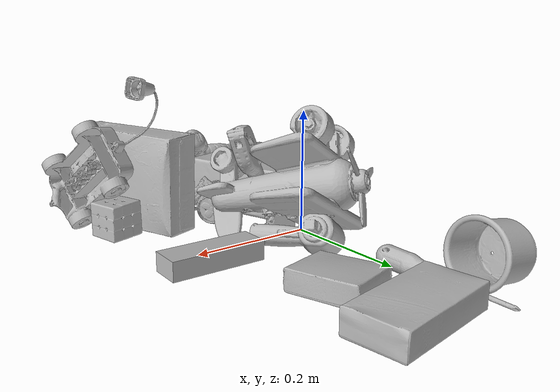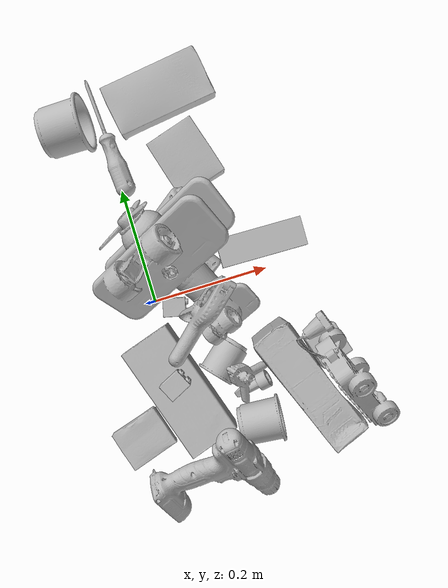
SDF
<sdf version="1.4">
  <world name="default">
    <light name="light1" type="point">
      <pose>0 0 1 0 0 0</pose>
      <diffuse>3 3 3 1</diffuse>
      <specular>3 3 3 1</specular>
    </light>
    <light name="light2" type="point">
      <pose>0 0.5 2 0 0 0</pose>
      <diffuse>1 1 1 1</diffuse>
      <specular>1 1 1 1</specular>
    </light>
    <light name="light3" type="point">
      <pose>0 0.5 2 0 0 0</pose>
      <diffuse>3 3 3 1</diffuse>
      <specular>3 3 3 1</specular>
    </light>
    <scene>
      <ambient>0.7 0.7 0.7</ambient>
    </scene>
    <model name="box21">
      <link name="link_box21">
        <collision name="default">
          <geometry>
            <mesh>
              <uri>model://cracker_box/collision_meshes/collision.obj</uri>
              <scale>1.0 1.0 1.0</scale>
            </mesh>
          </geometry>
          <surface>
            <friction>
              <ode>
                <mu>0.5</mu>
                <mu2>0.5</mu2>
              </ode>
            </friction>
          <contact>
        <ode>
            <max_vel>0</max_vel>
            <min_depth>0.0001</min_depth>
            <kp>1e8</kp>
        </ode>
    </contact></surface>
        </collision>
        <visual name="default">
          <geometry>
            <mesh>
              <uri>model://cracker_box/visual_meshes/visual.dae</uri>
              <scale>1.0 1.0 1.0</scale>
            </mesh>
          </geometry>
        </visual>
        <inertial>
          <mass>2.2869980335235596</mass>
          <pose>0.0009464151225984097 0.0002543425071053207 -0.0017029535956680775 -0.0003162075418873318 -0.011106487737663914 0.0025467956997025456</pose>
          <inertia>
            <ixx>0.005817102</ixx>
            <iyy>0.009605178</iyy>
            <izz>0.013707472</izz>
            <ixy>0</ixy>
            <ixz>0</ixz>
            <iyz>0</iyz>
          </inertia>
        </inertial>
      </link>
      <pose>0.20595772564411163 -0.19597169756889343 0.08175771683454514 1.5452270728296906 0.009038232886644891 1.9498164013121533</pose>
    </model>
    <model name="box22">
      <link name="link_box22">
        <collision name="default">
          <geometry>
            <mesh>
              <uri>model://pudding_box/collision_meshes/collision.obj</uri>
              <scale>1.0 1.0 1.0</scale>
            </mesh>
          </geometry>
          <surface>
            <friction>
              <ode>
                <mu>0.5</mu>
                <mu2>0.5</mu2>
              </ode>
            </friction>
          <contact>
        <ode>
            <max_vel>0</max_vel>
            <min_depth>0.0001</min_depth>
            <kp>1e8</kp>
        </ode>
    </contact></surface>
        </collision>
        <visual name="default">
          <geometry>
            <mesh>
              <uri>model://pudding_box/visual_meshes/visual.dae</uri>
              <scale>1.0 1.0 1.0</scale>
            </mesh>
          </geometry>
        </visual>
        <inertial>
          <mass>0.5370154976844788</mass>
          <pose>0.0004894821904599667 0.0008067885646596551 -0.0005188827635720372 0.005213101796859606 -0.006603800100757192 0.02007981956729938</pose>
          <inertia>
            <ixx>0.0006070684</ixx>
            <iyy>0.00040843996</iyy>
            <izz>0.00089649507</izz>
            <ixy>0</ixy>
            <ixz>0</ixz>
            <iyz>0</iyz>
          </inertia>
        </inertial>
      </link>
      <pose>0.12240390479564667 0.2189505696296692 0.019726118072867393 0.022342655979657 -0.011381309182727183 0.28390295953469946</pose>
    </model>
    <model name="box23">
      <link name="link_box23">
        <collision name="default">
          <geometry>
            <mesh>
              <uri>model://jenga/collision_meshes/collision.obj</uri>
              <scale>1.0 1.0 1.0</scale>
            </mesh>
          </geometry>
          <surface>
            <friction>
              <ode>
                <mu>0.5</mu>
                <mu2>0.5</mu2>
              </ode>
            </friction>
          <contact>
        <ode>
            <max_vel>0</max_vel>
            <min_depth>0.0001</min_depth>
            <kp>1e8</kp>
        </ode>
    </contact></surface>
        </collision>
        <visual name="default">
          <geometry>
            <mesh>
              <uri>model://jenga/visual_meshes/visual.dae</uri>
              <scale>1.0 1.0 1.0</scale>
            </mesh>
          </geometry>
        </visual>
        <inertial>
          <mass>0.17325031757354736</mass>
          <pose>-2.502855807051674e-07 -0.0001025000965455547 -4.0923401684267446e-05 0.0 -7.34215461761844e-07 0.0</pose>
          <inertia>
            <ixx>4.7942573e-05</ixx>
            <iyy>0.00032485754</iyy>
            <izz>0.00034681303</izz>
            <ixy>0</ixy>
            <ixz>0</ixz>
            <iyz>0</iyz>
          </inertia>
        </inertial>
      </link>
      <pose>0.20417584478855133 0.044180478900671005 0.014999997802078724 2.6392829362857538e-09 5.668232797153456e-09 3.121284040775663</pose>
    </model>
    <model name="cup1">
      <link name="link_cup1">
        <collision name="default">
          <geometry>
            <mesh>
              <uri>model://c_cups/collision_meshes/collision.obj</uri>
              <scale>1.0 1.0 1.0</scale>
            </mesh>
          </geometry>
          <surface>
            <friction>
              <ode>
                <mu>0.5</mu>
                <mu2>0.5</mu2>
              </ode>
            </friction>
          <contact>
        <ode>
            <max_vel>0</max_vel>
            <min_depth>0.0001</min_depth>
            <kp>1e8</kp>
        </ode>
    </contact></surface>
        </collision>
        <visual name="default">
          <geometry>
            <mesh>
              <uri>model://c_cups/visual_meshes/visual.dae</uri>
              <scale>1.0 1.0 1.0</scale>
            </mesh>
          </geometry>
        </visual>
        <inertial>
          <mass>0.033937059342861176</mass>
          <pose>0.0007237257086671889 0.002015391131862998 -0.0012750985333696008 0.3021568203324006 0.0134615240317058 -0.08771816491093205</pose>
          <inertia>
            <ixx>2.5238536e-05</ixx>
            <iyy>2.4792533e-05</iyy>
            <izz>2.2320162e-05</izz>
            <ixy>0</ixy>
            <ixz>0</ixz>
            <iyz>0</iyz>
          </inertia>
        </inertial>
      </link>
      <pose>0.0870780348777771 -0.12719012796878815 0.030161790549755096 -1.4808838227399947 -0.5308974328243686 2.24836778232867</pose>
    </model>
    <model name="cup2">
      <link name="link_cup2">
        <collision name="default">
          <geometry>
            <mesh>
              <uri>model://f_cups/collision_meshes/collision.obj</uri>
              <scale>1.0 1.0 1.0</scale>
            </mesh>
          </geometry>
          <surface>
            <friction>
              <ode>
                <mu>0.5</mu>
                <mu2>0.5</mu2>
              </ode>
            </friction>
          <contact>
        <ode>
            <max_vel>0</max_vel>
            <min_depth>0.0001</min_depth>
            <kp>1e8</kp>
        </ode>
    </contact></surface>
        </collision>
        <visual name="default">
          <geometry>
            <mesh>
              <uri>model://f_cups/visual_meshes/visual.dae</uri>
              <scale>1.0 1.0 1.0</scale>
            </mesh>
          </geometry>
        </visual>
        <inertial>
          <mass>0.10278050601482391</mass>
          <pose>-0.003171466989442706 -0.0006240068469196558 -0.003655537962913513 0.7862283183637603 -0.2607933822369466 -0.1823733550036739</pose>
          <inertia>
            <ixx>9.661645e-05</ixx>
            <iyy>0.00010135175</iyy>
            <izz>0.000105510015</izz>
            <ixy>0</ixy>
            <ixz>0</ixz>
            <iyz>0</iyz>
          </inertia>
        </inertial>
      </link>
      <pose>0.11472703516483307 -0.24593481421470642 0.03703109547495842 1.3152992105240757 -1.17829948437787 1.7429390438537664</pose>
    </model>
    <model name="box11">
      <link name="link_box11">
        <collision name="default">
          <geometry>
            <mesh>
              <uri>model://wood_block/collision_meshes/collision.obj</uri>
              <scale>1.0 1.0 1.0</scale>
            </mesh>
          </geometry>
          <surface>
            <friction>
              <ode>
                <mu>0.5</mu>
                <mu2>0.5</mu2>
              </ode>
            </friction>
          <contact>
        <ode>
            <max_vel>0</max_vel>
            <min_depth>0.0001</min_depth>
            <kp>1e8</kp>
        </ode>
    </contact></surface>
        </collision>
        <visual name="default">
          <geometry>
            <mesh>
              <uri>model://wood_block/visual_meshes/visual.dae</uri>
              <scale>1.0 1.0 1.0</scale>
            </mesh>
          </geometry>
        </visual>
        <inertial>
          <mass>2.321592330932617</mass>
          <pose>-5.813315056002466e-06 -0.000570809468626976 0.0002640858292579651 -0.052209755297172346 -0.005192694580027673 -0.006861376555374886</pose>
          <inertia>
            <ixx>0.0031066423</ixx>
            <iyy>0.009813884</iyy>
            <izz>0.009777175</izz>
            <ixy>0</ixy>
            <ixz>0</ixz>
            <iyz>0</iyz>
          </inertia>
        </inertial>
      </link>
      <pose>0.0001825930376071483 -0.1522611826658249 0.04570063203573227 1.5681308370313523 -0.0069391889429245195 1.889520383020991</pose>
    </model>
    <model name="box12">
      <link name="link_box12">
        <collision name="default">
          <geometry>
            <mesh>
              <uri>model://gelatin_box/collision_meshes/collision.obj</uri>
              <scale>1.0 1.0 1.0</scale>
            </mesh>
          </geometry>
          <surface>
            <friction>
              <ode>
                <mu>0.5</mu>
                <mu2>0.5</mu2>
              </ode>
            </friction>
          <contact>
        <ode>
            <max_vel>0</max_vel>
            <min_depth>0.0001</min_depth>
            <kp>1e8</kp>
        </ode>
    </contact></surface>
        </collision>
        <visual name="default">
          <geometry>
            <mesh>
              <uri>model://gelatin_box/visual_meshes/visual.dae</uri>
              <scale>1.0 1.0 1.0</scale>
            </mesh>
          </geometry>
        </visual>
        <inertial>
          <mass>0.2263340801000595</mass>
          <pose>0.0004319618456065655 0.00011156871914863586 -0.00036403207923285663 -0.001050371981036731 -0.004755818689382226 0.016440561334450605</pose>
          <inertia>
            <ixx>0.00015977336</ixx>
            <iyy>0.00011412529</iyy>
            <izz>0.00024321067</izz>
            <ixy>0</ixy>
            <ixz>0</ixz>
            <iyz>0</iyz>
          </inertia>
        </inertial>
      </link>
      <pose>-0.08443709462881088 -0.21905283629894257 0.01516831386834383 0.005597547266671039 -0.007304609965496022 1.865024348420262</pose>
    </model>
    <model name="box13">
      <link name="link_box13">
        <collision name="default">
          <geometry>
            <mesh>
              <uri>model://sugar_box/collision_meshes/collision.obj</uri>
              <scale>1.0 1.0 1.0</scale>
            </mesh>
          </geometry>
          <surface>
            <friction>
              <ode>
                <mu>0.5</mu>
                <mu2>0.5</mu2>
              </ode>
            </friction>
          <contact>
        <ode>
            <max_vel>0</max_vel>
            <min_depth>0.0001</min_depth>
            <kp>1e8</kp>
        </ode>
    </contact></surface>
        </collision>
        <visual name="default">
          <geometry>
            <mesh>
              <uri>model://sugar_box/visual_meshes/visual.dae</uri>
              <scale>1.0 1.0 1.0</scale>
            </mesh>
          </geometry>
        </visual>
        <inertial>
          <mass>0.4976349174976349</mass>
          <pose>0.0010343727190047503 3.849109634757042e-05 -0.00036364805418998003 -0.0004046263004245651 0.001050663405794887 0.002615379021776999</pose>
          <inertia>
            <ixx>0.0004146281</ixx>
            <iyy>0.0013401629</iyy>
            <izz>0.0016043353</izz>
            <ixy>0</ixy>
            <ixz>0</ixz>
            <iyz>0</iyz>
          </inertia>
        </inertial>
      </link>
      <pose>0.11010953783988953 0.33925923705101013 0.022798605263233185 0.0007757345817441783 -0.023433366526739594 -2.996276098797765</pose>
    </model>
    <model name="box14">
      <link name="link_box14">
        <collision name="default">
          <geometry>
            <mesh>
              <uri>model://rubiks_cube/collision_meshes/collision.obj</uri>
              <scale>1.0 1.0 1.0</scale>
            </mesh>
          </geometry>
          <surface>
            <friction>
              <ode>
                <mu>0.5</mu>
                <mu2>0.5</mu2>
              </ode>
            </friction>
          <contact>
        <ode>
            <max_vel>0</max_vel>
            <min_depth>0.0001</min_depth>
            <kp>1e8</kp>
        </ode>
    </contact></surface>
        </collision>
        <visual name="default">
          <geometry>
            <mesh>
              <uri>model://rubiks_cube/visual_meshes/visual.dae</uri>
              <scale>1.0 1.0 1.0</scale>
            </mesh>
          </geometry>
        </visual>
        <inertial>
          <mass>0.2531126141548157</mass>
          <pose>2.6721041649580002e-05 5.2569666877388954e-05 -7.264316536748083e-06 -0.05467274129792389 -0.0981396008906979 -0.0344563195746163</pose>
          <inertia>
            <ixx>0.00013986173</ixx>
            <iyy>0.00013920949</iyy>
            <izz>0.00014102072</izz>
            <ixy>0</ixy>
            <ixz>0</ixz>
            <iyz>0</iyz>
          </inertia>
        </inertial>
      </link>
      <pose>0.26035916805267334 -0.15475879609584808 0.029059670865535736 -3.134204572073367 0.010910744848803531 0.2535735786729371</pose>
    </model>
    <model name="cup15">
      <link name="link_cup15">
        <collision name="default">
          <geometry>
            <mesh>
              <uri>model://j_cups/collision_meshes/collision.obj</uri>
              <scale>1.0 1.0 1.0</scale>
            </mesh>
          </geometry>
          <surface>
            <friction>
              <ode>
                <mu>0.5</mu>
                <mu2>0.5</mu2>
              </ode>
            </friction>
          <contact>
        <ode>
            <max_vel>0</max_vel>
            <min_depth>0.0001</min_depth>
            <kp>1e8</kp>
        </ode>
    </contact></surface>
        </collision>
        <visual name="default">
          <geometry>
            <mesh>
              <uri>model://j_cups/visual_meshes/visual.dae</uri>
              <scale>1.0 1.0 1.0</scale>
            </mesh>
          </geometry>
        </visual>
        <inertial>
          <mass>0.12765173614025116</mass>
          <pose>0.0006164864171296358 0.0005398980574682355 -0.0013479006011039019 0.030303852295551513 0.03757989298695449 0.4386938541947324</pose>
          <inertia>
            <ixx>0.00018743309</ixx>
            <iyy>0.00018938213</iyy>
            <izz>0.0002160715</izz>
            <ixy>0</ixy>
            <ixz>0</ixz>
            <iyz>0</iyz>
          </inertia>
        </inertial>
      </link>
      <pose>-0.05729382857680321 0.3217616379261017 0.04715031385421753 1.441299893812593 -0.17633272059196292 1.5742515457914235</pose>
    </model>
    <model name="toy1">
      <link name="link_toy1">
        <collision name="default">
          <geometry>
            <mesh>
              <uri>model://f_lego_duplo/collision_meshes/collision.obj</uri>
              <scale>1.0 1.0 1.0</scale>
            </mesh>
          </geometry>
          <surface>
            <friction>
              <ode>
                <mu>0.5</mu>
                <mu2>0.5</mu2>
              </ode>
            </friction>
          <contact>
        <ode>
            <max_vel>0</max_vel>
            <min_depth>0.0001</min_depth>
            <kp>1e8</kp>
        </ode>
    </contact></surface>
        </collision>
        <visual name="default">
          <geometry>
            <mesh>
              <uri>model://f_lego_duplo/visual_meshes/visual.dae</uri>
              <scale>1.0 1.0 1.0</scale>
            </mesh>
          </geometry>
        </visual>
        <inertial>
          <mass>0.04013235494494438</mass>
          <pose>2.369376306887716e-05 0.00013393163681030273 0.0018837876850739121 0.029838734112773806 -0.014424842824784668 -0.6756708500035773</pose>
          <inertia>
            <ixx>8.480189e-06</ixx>
            <iyy>8.555736e-06</iyy>
            <izz>7.361164e-06</izz>
            <ixy>0</ixy>
            <ixz>0</ixz>
            <iyz>0</iyz>
          </inertia>
        </inertial>
      </link>
      <pose>0.0008977008983492851 -0.13718700408935547 0.10607940703630447 1.5661409994172035 4.598846008348593e-05 2.0315988139120718</pose>
    </model>
    <model name="toy2">
      <link name="link_toy2">
        <collision name="default">
          <geometry>
            <mesh>
              <uri>model://e_toy_airplane/collision_meshes/collision.obj</uri>
              <scale>1.0 1.0 1.0</scale>
            </mesh>
          </geometry>
          <surface>
            <friction>
              <ode>
                <mu>0.5</mu>
                <mu2>0.5</mu2>
              </ode>
            </friction>
          <contact>
        <ode>
            <max_vel>0</max_vel>
            <min_depth>0.0001</min_depth>
            <kp>1e8</kp>
        </ode>
    </contact></surface>
        </collision>
        <visual name="default">
          <geometry>
            <mesh>
              <uri>model://e_toy_airplane/visual_meshes/visual.dae</uri>
              <scale>1.0 1.0 1.0</scale>
            </mesh>
          </geometry>
        </visual>
        <inertial>
          <mass>0.030105752870440483</mass>
          <pose>0.00011740480840671808 -2.248285454697907e-05 -0.011187204159796238 0.0055184715057391125 0.009228317867647443 0.150413097465581</pose>
          <inertia>
            <ixx>9.18862e-06</ixx>
            <iyy>9.094625e-06</iyy>
            <izz>2.761542e-06</izz>
            <ixy>0</ixy>
            <ixz>0</ixz>
            <iyz>0</iyz>
          </inertia>
        </inertial>
      </link>
      <pose>0.11740215867757797 -0.18836098909378052 0.010706737637519836 2.185584306833009 -1.1048551387725816 -1.9107731712239584</pose>
    </model>
    <model name="toy3">
      <link name="link_toy3">
        <collision name="default">
          <geometry>
            <mesh>
              <uri>model://g_lego_duplo/collision_meshes/collision.obj</uri>
              <scale>1.0 1.0 1.0</scale>
            </mesh>
          </geometry>
          <surface>
            <friction>
              <ode>
                <mu>0.5</mu>
                <mu2>0.5</mu2>
              </ode>
            </friction>
          <contact>
        <ode>
            <max_vel>0</max_vel>
            <min_depth>0.0001</min_depth>
            <kp>1e8</kp>
        </ode>
    </contact></surface>
        </collision>
        <visual name="default">
          <geometry>
            <mesh>
              <uri>model://g_lego_duplo/visual_meshes/visual.dae</uri>
              <scale>1.0 1.0 1.0</scale>
            </mesh>
          </geometry>
        </visual>
        <inertial>
          <mass>0.4529305100440979</mass>
          <pose>-0.050047703087329865 0.0017554633086547256 0.0038806775119155645 0.010963008114131517 0.03810824387856379 -0.09653032518797504</pose>
          <inertia>
            <ixx>0.00065630145</ixx>
            <iyy>0.0019842102</iyy>
            <izz>0.0024823209</izz>
            <ixy>0</ixy>
            <ixz>0</ixz>
            <iyz>0</iyz>
          </inertia>
        </inertial>
      </link>
      <pose>0.2603764235973358 -0.1783704310655594 0.13347186148166656 -1.7464542042415883 -0.7148126433189795 2.033192431139491</pose>
    </model>
    <model name="toy4">
      <link name="link_toy4">
        <collision name="default">
          <geometry>
            <mesh>
              <uri>model://b_lego_duplo/collision_meshes/collision.obj</uri>
              <scale>1.0 1.0 1.0</scale>
            </mesh>
          </geometry>
          <surface>
            <friction>
              <ode>
                <mu>0.5</mu>
                <mu2>0.5</mu2>
              </ode>
            </friction>
          <contact>
        <ode>
            <max_vel>0</max_vel>
            <min_depth>0.0001</min_depth>
            <kp>1e8</kp>
        </ode>
    </contact></surface>
        </collision>
        <visual name="default">
          <geometry>
            <mesh>
              <uri>model://b_lego_duplo/visual_meshes/visual.dae</uri>
              <scale>1.0 1.0 1.0</scale>
            </mesh>
          </geometry>
        </visual>
        <inertial>
          <mass>0.018499748781323433</mass>
          <pose>-0.00011053003981942311 -9.15247255761642e-06 0.001929429592564702 -0.037494549291744686 -0.026354734626349716 0.4518828938821803</pose>
          <inertia>
            <ixx>3.786112e-06</ixx>
            <iyy>3.8115643e-06</iyy>
            <izz>3.3733036e-06</izz>
            <ixy>0</ixy>
            <ixz>0</ixz>
            <iyz>0</iyz>
          </inertia>
        </inertial>
      </link>
      <pose>0.03194680064916611 -0.01922020874917507 0.016121311113238335 1.5723748752481503 -0.012011103757239941 1.3426403500157416</pose>
    </model>
    <model name="toy5">
      <link name="link_toy5">
        <collision name="default">
          <geometry>
            <mesh>
              <uri>model://b_toy_airplane/collision_meshes/collision.obj</uri>
              <scale>1.0 1.0 1.0</scale>
            </mesh>
          </geometry>
          <surface>
            <friction>
              <ode>
                <mu>0.5</mu>
                <mu2>0.5</mu2>
              </ode>
            </friction>
          <contact>
        <ode>
            <max_vel>0</max_vel>
            <min_depth>0.0001</min_depth>
            <kp>1e8</kp>
        </ode>
    </contact></surface>
        </collision>
        <visual name="default">
          <geometry>
            <mesh>
              <uri>model://b_toy_airplane/visual_meshes/visual.dae</uri>
              <scale>1.0 1.0 1.0</scale>
            </mesh>
          </geometry>
        </visual>
        <inertial>
          <mass>0.38904744386672974</mass>
          <pose>0.00508136348798871 0.004015582147985697 0.00954306498169899 -0.040018071915393034 -0.04022181905785318 -0.5601502897874057</pose>
          <inertia>
            <ixx>0.00072227366</ixx>
            <iyy>0.0002886998</iyy>
            <izz>0.0008985803</izz>
            <ixy>0</ixy>
            <ixz>0</ixz>
            <iyz>0</iyz>
          </inertia>
        </inertial>
      </link>
      <pose>0.07757481187582016 0.10123127698898315 0.0252375490963459 0.11839505988876581 -0.46308492681600655 0.5978942104924428</pose>
    </model>
    <model name="toy6">
      <link name="link_toy6">
        <collision name="default">
          <geometry>
            <mesh>
              <uri>model://a_toy_airplane/collision_meshes/collision.obj</uri>
              <scale>1.0 1.0 1.0</scale>
            </mesh>
          </geometry>
          <surface>
            <friction>
              <ode>
                <mu>0.5</mu>
                <mu2>0.5</mu2>
              </ode>
            </friction>
          <contact>
        <ode>
            <max_vel>0</max_vel>
            <min_depth>0.0001</min_depth>
            <kp>1e8</kp>
        </ode>
    </contact></surface>
        </collision>
        <visual name="default">
          <geometry>
            <mesh>
              <uri>model://a_toy_airplane/visual_meshes/visual.dae</uri>
              <scale>1.0 1.0 1.0</scale>
            </mesh>
          </geometry>
        </visual>
        <inertial>
          <mass>2.344027519226074</mass>
          <pose>0.025165099650621414 -0.003707322059199214 -0.0011962436838075519 -0.012016950381748406 -0.14663507119063698 0.004149124939747771</pose>
          <inertia>
            <ixx>0.008512287</ixx>
            <iyy>0.012404123</iyy>
            <izz>0.014523712</izz>
            <ixy>0</ixy>
            <ixz>0</ixz>
            <iyz>0</iyz>
          </inertia>
        </inertial>
      </link>
      <pose>0.06805479526519775 0.03704649955034256 0.09101027250289917 2.633699079056992 -0.38455331505678114 2.196964019324472</pose>
    </model>
    <model name="hardware1">
      <link name="link_hardware1">
        <collision name="default">
          <geometry>
            <mesh>
              <uri>model://power_drill/collision_meshes/collision.obj</uri>
              <scale>1.0 1.0 1.0</scale>
            </mesh>
          </geometry>
          <surface>
            <friction>
              <ode>
                <mu>0.5</mu>
                <mu2>0.5</mu2>
              </ode>
            </friction>
          <contact>
        <ode>
            <max_vel>0</max_vel>
            <min_depth>0.0001</min_depth>
            <kp>1e8</kp>
        </ode>
    </contact></surface>
        </collision>
        <visual name="default">
          <geometry>
            <mesh>
              <uri>model://power_drill/visual_meshes/visual.dae</uri>
              <scale>1.0 1.0 1.0</scale>
            </mesh>
          </geometry>
        </visual>
        <inertial>
          <mass>0.3504050374031067</mass>
          <pose>-0.014780547469854355 0.014369429089128971 0.0012414171360433102 0.0046091621872236125 0.004073022304059966 -0.18362696816981472</pose>
          <inertia>
            <ixx>0.001427917</ixx>
            <iyy>0.0005618108</iyy>
            <izz>0.0018858167</izz>
            <ixy>0</ixy>
            <ixz>0</ixz>
            <iyz>0</iyz>
          </inertia>
        </inertial>
      </link>
      <pose>0.012585821561515331 -0.3150637149810791 0.053766779601573944 0.23992532003215072 0.7062101376915199 -1.2171798004010574</pose>
    </model>
    <model name="hardware2">
      <link name="link_hardware2">
        <collision name="default">
          <geometry>
            <mesh>
              <uri>model://phillips_screwdriver/collision_meshes/collision.obj</uri>
              <scale>1.0 1.0 1.0</scale>
            </mesh>
          </geometry>
          <surface>
            <friction>
              <ode>
                <mu>0.5</mu>
                <mu2>0.5</mu2>
              </ode>
            </friction>
          <contact>
        <ode>
            <max_vel>0</max_vel>
            <min_depth>0.0001</min_depth>
            <kp>1e8</kp>
        </ode>
    </contact></surface>
        </collision>
        <visual name="default">
          <geometry>
            <mesh>
              <uri>model://phillips_screwdriver/visual_meshes/visual.dae</uri>
              <scale>1.0 1.0 1.0</scale>
            </mesh>
          </geometry>
        </visual>
        <inertial>
          <mass>0.06613585352897644</mass>
          <pose>-0.04777182638645172 0.0010362302418798208 -0.000455554953077808 -0.157256923583716 0.005850995849984215 -0.0021567369270283215</pose>
          <inertia>
            <ixx>7.770284e-06</ixx>
            <iyy>9.742579e-05</iyy>
            <izz>9.7508564e-05</izz>
            <ixy>0</ixy>
            <ixz>0</ixz>
            <iyz>0</iyz>
          </inertia>
        </inertial>
      </link>
      <pose>0.00307262409478426 0.2894755005836487 0.0139717236161232 2.0801303317565 0.04379126375538545 1.6369252162513754</pose>
    </model>
    <model name="hardware3">
      <link name="link_hardware3">
        <collision name="default">
          <geometry>
            <mesh>
              <uri>model://large_clamp/collision_meshes/collision.obj</uri>
              <scale>1.0 1.0 1.0</scale>
            </mesh>
          </geometry>
          <surface>
            <friction>
              <ode>
                <mu>0.5</mu>
                <mu2>0.5</mu2>
              </ode>
            </friction>
          <contact>
        <ode>
            <max_vel>0</max_vel>
            <min_depth>0.0001</min_depth>
            <kp>1e8</kp>
        </ode>
    </contact></surface>
        </collision>
        <visual name="default">
          <geometry>
            <mesh>
              <uri>model://large_clamp/visual_meshes/visual.dae</uri>
              <scale>1.0 1.0 1.0</scale>
            </mesh>
          </geometry>
        </visual>
        <inertial>
          <mass>0.0812491774559021</mass>
          <pose>0.00636935792863369 0.00035856812610290945 -0.0001839803153416142 -0.0021330695247891995 0.009671592144941876 0.026633191629386817</pose>
          <inertia>
            <ixx>7.1684015e-05</ixx>
            <iyy>0.00013613176</iyy>
            <izz>0.00019693196</izz>
            <ixy>0</ixy>
            <ixz>0</ixz>
            <iyz>0</iyz>
          </inertia>
        </inertial>
      </link>
      <pose>0.07617805898189545 -0.038907259702682495 0.12832055985927582 1.8964427874129208 -0.6393120144901199 0.5859290240879529</pose>
    </model>
    <model name="hardware4">
      <link name="link_hardware4">
        <collision name="default">
          <geometry>
            <mesh>
              <uri>model://medium_clamp/collision_meshes/collision.obj</uri>
              <scale>1.0 1.0 1.0</scale>
            </mesh>
          </geometry>
          <surface>
            <friction>
              <ode>
                <mu>0.5</mu>
                <mu2>0.5</mu2>
              </ode>
            </friction>
          <contact>
        <ode>
            <max_vel>0</max_vel>
            <min_depth>0.0001</min_depth>
            <kp>1e8</kp>
        </ode>
    </contact></surface>
        </collision>
        <visual name="default">
          <geometry>
            <mesh>
              <uri>model://medium_clamp/visual_meshes/visual.dae</uri>
              <scale>1.0 1.0 1.0</scale>
            </mesh>
          </geometry>
        </visual>
        <inertial>
          <mass>0.04165364429354668</mass>
          <pose>0.0053909956477582455 0.00039532381924800575 -0.0001222159044118598 -0.0012269202016338824 0.0025845009837354585 0.038207769727488725</pose>
          <inertia>
            <ixx>1.134795e-05</ixx>
            <iyy>1.6514476e-05</iyy>
            <izz>2.5437248e-05</izz>
            <ixy>0</ixy>
            <ixz>0</ixz>
            <iyz>0</iyz>
          </inertia>
        </inertial>
      </link>
      <pose>0.10984327644109726 -0.16768047213554382 0.03484446182847023 -3.0224113255891814 -0.8639238871257623 2.278466788827335</pose>
    </model>
  <physics type="ode">
      <max_contacts>50</max_contacts>
      <ode>
        <solver>
          <type>quick</type>
          <iters>75</iters>
        </solver>
        <constraints>
          <contact_max_correcting_vel>0</contact_max_correcting_vel>
          <contact_surface_layer>0</contact_surface_layer>
        </constraints>
      </ode>
    </physics></world>
</sdf>
